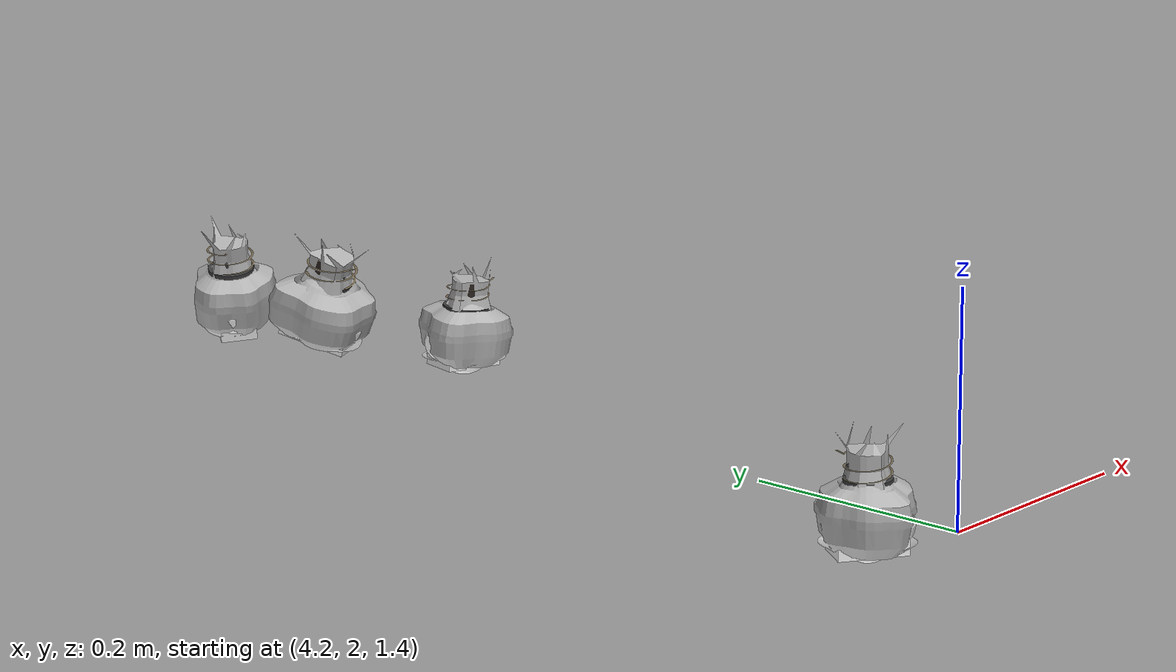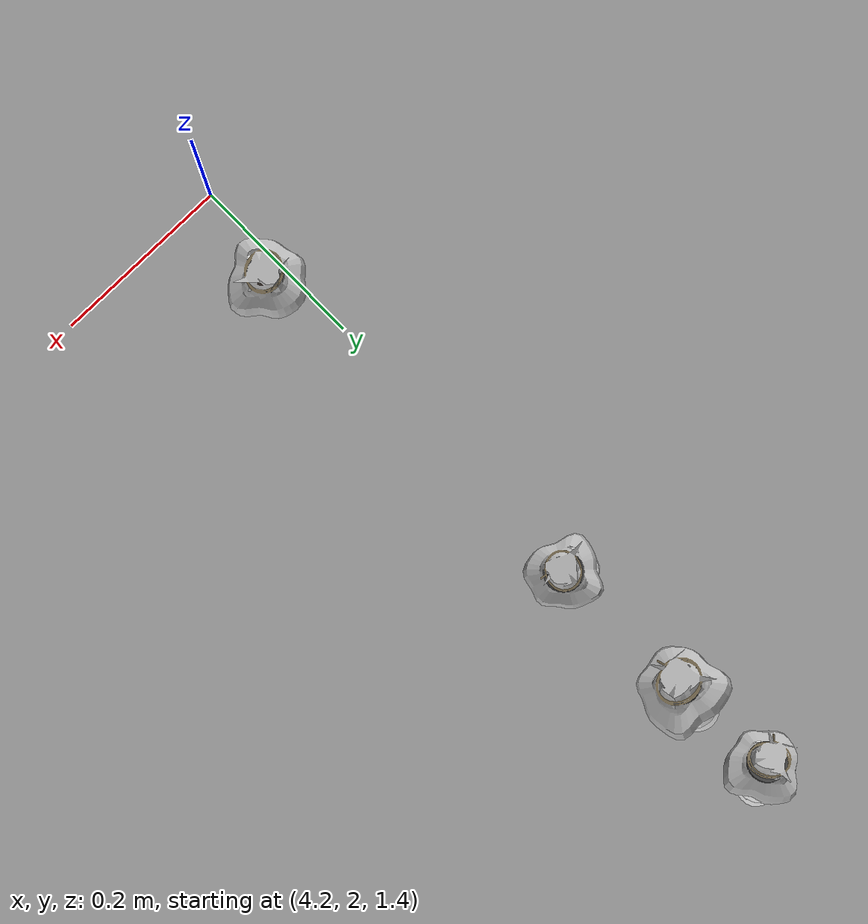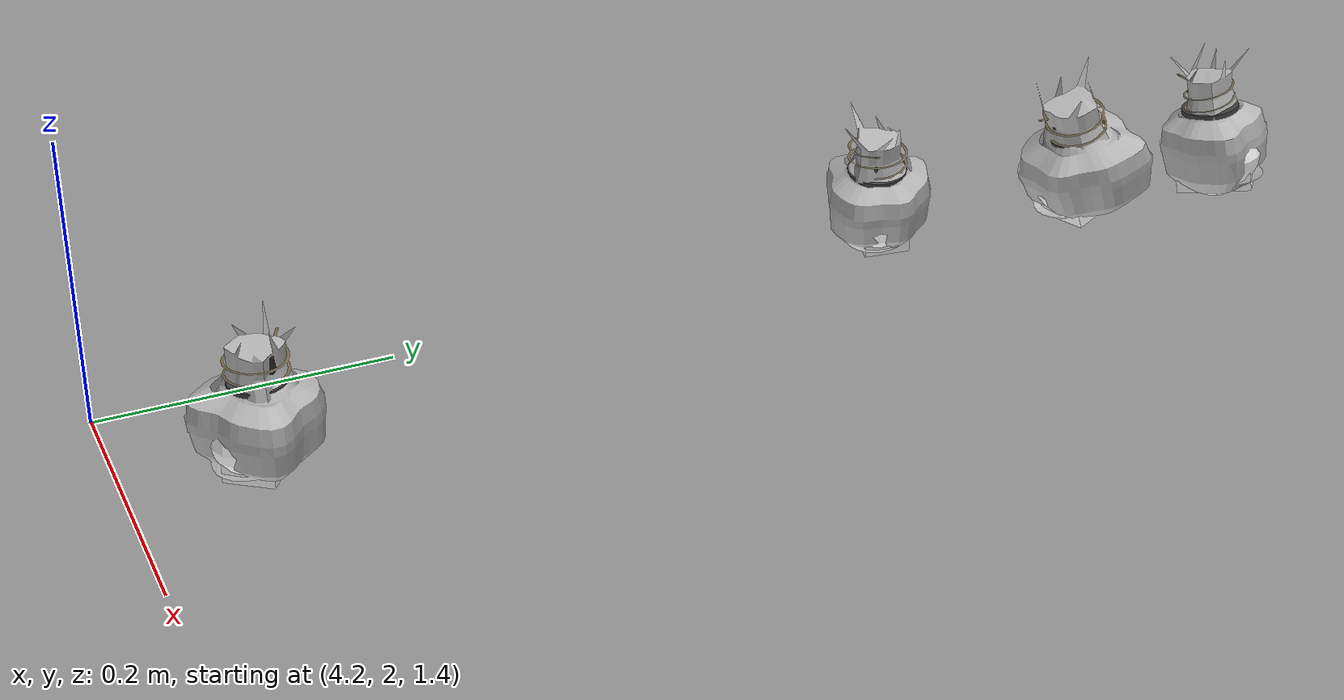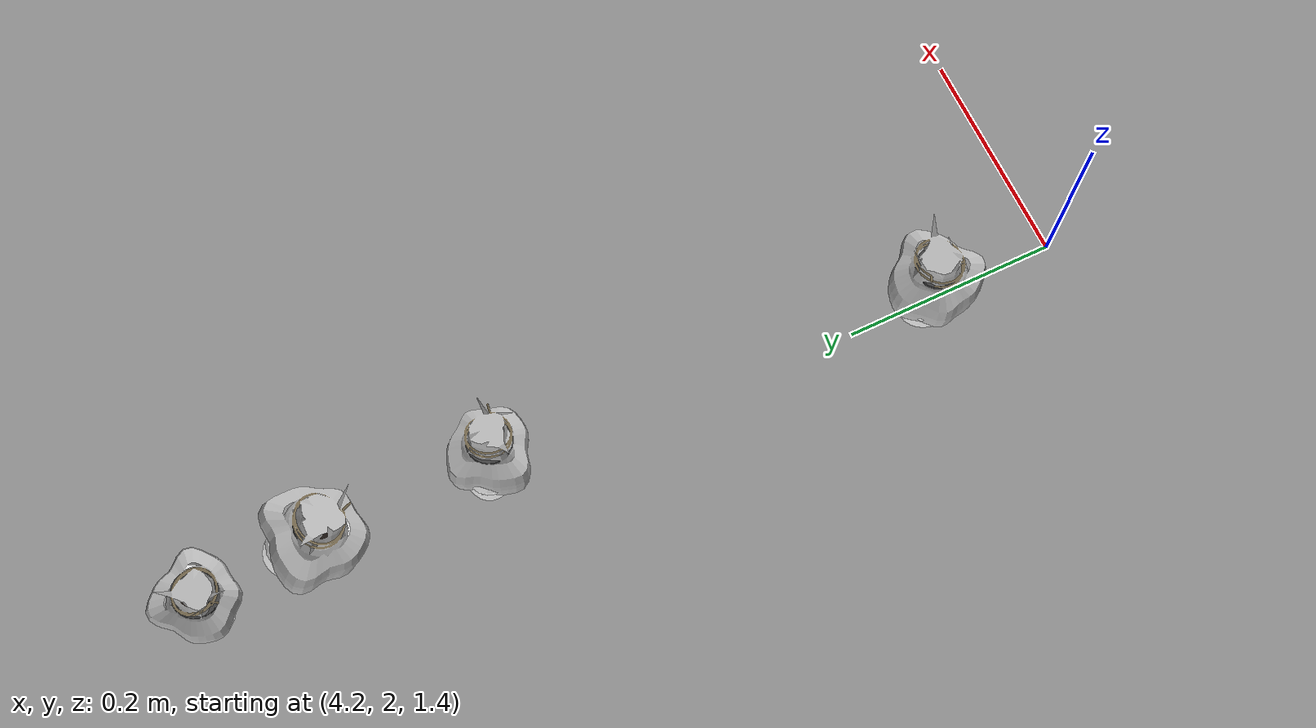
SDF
<sdf version="1.11">
 <world name="peach_orchard">
  <model name="ground">
   <static>true</static>
   <link name="link">
    <visual name="soil">
     <geometry><plane><normal>0 0 1</normal><size>32 22</size></plane></geometry>
     <material>
      <ambient>1 1 1 1</ambient>
      <diffuse>1 1 1 1</diffuse>
      <specular>0.1 0.1 0.1 1</specular>
      <pbr>
       <metal>
        <albedo_map>textures/soil_albedo.png</albedo_map>
        <normal_map type="tangent">textures/soil_normal.png</normal_map>
        <roughness>0.95</roughness>
        <metalness>0</metalness>
       </metal>
      </pbr>
     </material>
    </visual>
    <collision name="c_soil">
     <geometry><plane><normal>0 0 1</normal><size>32 22</size></plane></geometry>
    </collision>
   </link>
  </model>
  <model name="peach_tree_r3_t4_00">
   <pose>4.22 2.54373 1.42739 0 0.0760497 -0.506786</pose>
   <static>true</static>
   <link name="bag">
    <visual name="bag_mesh">
     <pose>0 0 0.038293 0 0 -0</pose>
     <geometry>
      <mesh><uri>model://peach_sim/meshes/bagged_peach.glb</uri><scale>0.945818 1.05032 0.870296</scale></mesh>
     </geometry>
    </visual>
    <visual name="body">
     <pose>0 0 0.020293 0 0 0</pose>
     <geometry><ellipsoid><radii>0.0354682 0.0273084 0.0219165</radii></ellipsoid></geometry>
     <material>
      <ambient>1 1 1 1</ambient>
      <diffuse>1 1 1 1</diffuse>
      <specular>0.1 0.1 0.1 1</specular>
      <pbr>
       <metal>
        <albedo_map>textures/paper_bag_albedo.png</albedo_map>
        <normal_map type="tangent">textures/paper_bag_normal.png</normal_map>
        <roughness>0.72</roughness>
        <metalness>0</metalness>
       </metal>
      </pbr>
     </material>
    </visual>
    <visual name="bottom_fold">
     <pose>0 0 0.012 0 0 0.35</pose>
     <geometry><box><size>0.0549757 0.0314046 0.022</size></box></geometry>
     <material>
      <ambient>1 1 1 1</ambient>
      <diffuse>1 1 1 1</diffuse>
      <specular>0.1 0.1 0.1 1</specular>
      <pbr>
       <metal>
        <albedo_map>textures/paper_bag_albedo.png</albedo_map>
        <normal_map type="tangent">textures/paper_bag_normal.png</normal_map>
        <roughness>0.8</roughness>
        <metalness>0</metalness>
       </metal>
      </pbr>
     </material>
    </visual>
    <visual name="fruit">
     <pose>0 0 0.0183581 0 0 0</pose>
     <geometry><sphere><radius>0.0253324</radius></sphere></geometry>
     <material>
      <ambient>1 1 1 1</ambient>
      <diffuse>1 1 1 1</diffuse>
      <specular>0.1 0.1 0.1 1</specular>
      <pbr>
       <metal>
        <albedo_map>textures/fruit_skin_albedo.png</albedo_map>
        <normal_map type="tangent">textures/fruit_skin_normal.png</normal_map>
        <roughness>0.55</roughness>
        <metalness>0</metalness>
       </metal>
      </pbr>
     </material>
    </visual>
    <visual name="neck">
     <pose>0 0 0.0495861 0 0 0</pose>
     <geometry><cylinder><radius>0.013</radius><length>0.018</length></cylinder></geometry>
     <material>
      <ambient>1 1 1 1</ambient>
      <diffuse>1 1 1 1</diffuse>
      <specular>0.1 0.1 0.1 1</specular>
      <pbr>
       <metal>
        <albedo_map>textures/paper_bag_albedo.png</albedo_map>
        <normal_map type="tangent">textures/paper_bag_normal.png</normal_map>
        <roughness>0.75</roughness>
        <metalness>0</metalness>
       </metal>
      </pbr>
     </material>
    </visual>
    <visual name="gather">
     <pose>0 0 0.0305861 0 0 0</pose>
     <geometry><cylinder><radius>0.019</radius><length>0.02</length></cylinder></geometry>
     <material>
      <ambient>1 1 1 1</ambient>
      <diffuse>1 1 1 1</diffuse>
      <specular>0.1 0.1 0.1 1</specular>
      <pbr>
       <metal>
        <albedo_map>textures/paper_bag_albedo.png</albedo_map>
        <normal_map type="tangent">textures/paper_bag_normal.png</normal_map>
        <roughness>0.8</roughness>
        <metalness>0</metalness>
       </metal>
      </pbr>
     </material>
    </visual>
    <visual name="inner_paper">
     <pose>0 0 0.0545861 0 0 0</pose>
     <geometry><cylinder><radius>0.01</radius><length>0.008</length></cylinder></geometry>
     <material>
      <ambient>0.180392 0.14902 0.133333 1</ambient>
      <diffuse>0.180392 0.14902 0.133333 1</diffuse>
      <specular>0.1 0.1 0.1 1</specular>
     </material>
    </visual>
    <visual name="wire_0">
     <pose>0 0 0.0445861 0 0 0</pose>
     <geometry><cylinder><radius>0.0205</radius><length>0.0035</length></cylinder></geometry>
     <material>
      <ambient>0.25 0.25 0.25 1</ambient>
      <diffuse>0.25 0.25 0.25 1</diffuse>
      <specular>0.1 0.1 0.1 1</specular>
     </material>
    </visual>
    <visual name="wire_1">
     <pose>0 0 0.0515861 0 0 0</pose>
     <geometry><cylinder><radius>0.0205</radius><length>0.0035</length></cylinder></geometry>
     <material>
      <ambient>0.25 0.25 0.25 1</ambient>
      <diffuse>0.25 0.25 0.25 1</diffuse>
      <specular>0.1 0.1 0.1 1</specular>
     </material>
    </visual>
    <visual name="wire_tail">
     <pose>0.01 0 0.0525861 0 0.521618 0</pose>
     <geometry><cylinder><radius>0.0012</radius><length>0.026</length></cylinder></geometry>
     <material>
      <ambient>0.25 0.25 0.25 1</ambient>
      <diffuse>0.25 0.25 0.25 1</diffuse>
      <specular>0.1 0.1 0.1 1</specular>
     </material>
    </visual>
    <collision name="c_body">
     <pose>0 0 0.020293 0 0 0</pose>
     <geometry><cylinder><radius>0.0354682</radius><length>0.0405861</length></cylinder></geometry>
    </collision>
   </link>
  </model>
  <model name="peach_tree_r3_t4_01">
   <pose>4.22 2.71573 1.41822 0 0.261357 -1.61579</pose>
   <static>true</static>
   <link name="bag">
    <visual name="bag_mesh">
     <pose>0 0 0.0409047 0 0 -0</pose>
     <geometry>
      <mesh><uri>model://peach_sim/meshes/bagged_peach.glb</uri><scale>1.08688 1.24991 0.929652</scale></mesh>
     </geometry>
    </visual>
    <visual name="body">
     <pose>0 0 0.0229047 0 0 0</pose>
     <geometry><ellipsoid><radii>0.0407579 0.0324977 0.0247371</radii></ellipsoid></geometry>
     <material>
      <ambient>1 1 1 1</ambient>
      <diffuse>1 1 1 1</diffuse>
      <specular>0.1 0.1 0.1 1</specular>
      <pbr>
       <metal>
        <albedo_map>textures/paper_bag_albedo.png</albedo_map>
        <normal_map type="tangent">textures/paper_bag_normal.png</normal_map>
        <roughness>0.72</roughness>
        <metalness>0</metalness>
       </metal>
      </pbr>
     </material>
    </visual>
    <visual name="bottom_fold">
     <pose>0 0 0.012 0 0 0.35</pose>
     <geometry><box><size>0.0631747 0.0373724 0.022</size></box></geometry>
     <material>
      <ambient>1 1 1 1</ambient>
      <diffuse>1 1 1 1</diffuse>
      <specular>0.1 0.1 0.1 1</specular>
      <pbr>
       <metal>
        <albedo_map>textures/paper_bag_albedo.png</albedo_map>
        <normal_map type="tangent">textures/paper_bag_normal.png</normal_map>
        <roughness>0.8</roughness>
        <metalness>0</metalness>
       </metal>
      </pbr>
     </material>
    </visual>
    <visual name="fruit">
     <pose>0 0 0.0215853 0 0 0</pose>
     <geometry><sphere><radius>0.0286887</radius></sphere></geometry>
     <material>
      <ambient>1 1 1 1</ambient>
      <diffuse>1 1 1 1</diffuse>
      <specular>0.1 0.1 0.1 1</specular>
      <pbr>
       <metal>
        <albedo_map>textures/fruit_skin_albedo.png</albedo_map>
        <normal_map type="tangent">textures/fruit_skin_normal.png</normal_map>
        <roughness>0.55</roughness>
        <metalness>0</metalness>
       </metal>
      </pbr>
     </material>
    </visual>
    <visual name="neck">
     <pose>0 0 0.0548094 0 0 0</pose>
     <geometry><cylinder><radius>0.013</radius><length>0.018</length></cylinder></geometry>
     <material>
      <ambient>1 1 1 1</ambient>
      <diffuse>1 1 1 1</diffuse>
      <specular>0.1 0.1 0.1 1</specular>
      <pbr>
       <metal>
        <albedo_map>textures/paper_bag_albedo.png</albedo_map>
        <normal_map type="tangent">textures/paper_bag_normal.png</normal_map>
        <roughness>0.75</roughness>
        <metalness>0</metalness>
       </metal>
      </pbr>
     </material>
    </visual>
    <visual name="gather">
     <pose>0 0 0.0358094 0 0 0</pose>
     <geometry><cylinder><radius>0.019</radius><length>0.02</length></cylinder></geometry>
     <material>
      <ambient>1 1 1 1</ambient>
      <diffuse>1 1 1 1</diffuse>
      <specular>0.1 0.1 0.1 1</specular>
      <pbr>
       <metal>
        <albedo_map>textures/paper_bag_albedo.png</albedo_map>
        <normal_map type="tangent">textures/paper_bag_normal.png</normal_map>
        <roughness>0.8</roughness>
        <metalness>0</metalness>
       </metal>
      </pbr>
     </material>
    </visual>
    <visual name="inner_paper">
     <pose>0 0 0.0598094 0 0 0</pose>
     <geometry><cylinder><radius>0.01</radius><length>0.008</length></cylinder></geometry>
     <material>
      <ambient>0.180392 0.14902 0.133333 1</ambient>
      <diffuse>0.180392 0.14902 0.133333 1</diffuse>
      <specular>0.1 0.1 0.1 1</specular>
     </material>
    </visual>
    <visual name="wire_0">
     <pose>0 0 0.0498094 0 0 0</pose>
     <geometry><cylinder><radius>0.0205</radius><length>0.0035</length></cylinder></geometry>
     <material>
      <ambient>0.25 0.25 0.25 1</ambient>
      <diffuse>0.25 0.25 0.25 1</diffuse>
      <specular>0.1 0.1 0.1 1</specular>
     </material>
    </visual>
    <visual name="wire_1">
     <pose>0 0 0.0568094 0 0 0</pose>
     <geometry><cylinder><radius>0.0205</radius><length>0.0035</length></cylinder></geometry>
     <material>
      <ambient>0.25 0.25 0.25 1</ambient>
      <diffuse>0.25 0.25 0.25 1</diffuse>
      <specular>0.1 0.1 0.1 1</specular>
     </material>
    </visual>
    <visual name="wire_tail">
     <pose>0.01 0 0.0578094 0 0.521618 0</pose>
     <geometry><cylinder><radius>0.0012</radius><length>0.026</length></cylinder></geometry>
     <material>
      <ambient>0.25 0.25 0.25 1</ambient>
      <diffuse>0.25 0.25 0.25 1</diffuse>
      <specular>0.1 0.1 0.1 1</specular>
     </material>
    </visual>
    <collision name="c_body">
     <pose>0 0 0.0229047 0 0 0</pose>
     <geometry><cylinder><radius>0.0407579</radius><length>0.0458094</length></cylinder></geometry>
    </collision>
   </link>
  </model>
  <model name="peach_tree_r3_t4_02">
   <pose>4.22 2.82045 1.40754 0 0.177568 -2.57309</pose>
   <static>true</static>
   <link name="bag">
    <visual name="bag_mesh">
     <pose>0 0 0.0425499 0 0 -0</pose>
     <geometry>
      <mesh><uri>model://peach_sim/meshes/bagged_peach.glb</uri><scale>0.917658 1.07547 0.967042</scale></mesh>
     </geometry>
    </visual>
    <visual name="body">
     <pose>0 0 0.0245499 0 0 0</pose>
     <geometry><ellipsoid><radii>0.0344122 0.0279623 0.0265139</radii></ellipsoid></geometry>
     <material>
      <ambient>1 1 1 1</ambient>
      <diffuse>1 1 1 1</diffuse>
      <specular>0.1 0.1 0.1 1</specular>
      <pbr>
       <metal>
        <albedo_map>textures/paper_bag_albedo.png</albedo_map>
        <normal_map type="tangent">textures/paper_bag_normal.png</normal_map>
        <roughness>0.72</roughness>
        <metalness>0</metalness>
       </metal>
      </pbr>
     </material>
    </visual>
    <visual name="bottom_fold">
     <pose>0 0 0.012 0 0 0.35</pose>
     <geometry><box><size>0.0533389 0.0321567 0.022</size></box></geometry>
     <material>
      <ambient>1 1 1 1</ambient>
      <diffuse>1 1 1 1</diffuse>
      <specular>0.1 0.1 0.1 1</specular>
      <pbr>
       <metal>
        <albedo_map>textures/paper_bag_albedo.png</albedo_map>
        <normal_map type="tangent">textures/paper_bag_normal.png</normal_map>
        <roughness>0.8</roughness>
        <metalness>0</metalness>
       </metal>
      </pbr>
     </material>
    </visual>
    <visual name="fruit">
     <pose>0 0 0.0174951 0 0 0</pose>
     <geometry><sphere><radius>0.024435</radius></sphere></geometry>
     <material>
      <ambient>1 1 1 1</ambient>
      <diffuse>1 1 1 1</diffuse>
      <specular>0.1 0.1 0.1 1</specular>
      <pbr>
       <metal>
        <albedo_map>textures/fruit_skin_albedo.png</albedo_map>
        <normal_map type="tangent">textures/fruit_skin_normal.png</normal_map>
        <roughness>0.55</roughness>
        <metalness>0</metalness>
       </metal>
      </pbr>
     </material>
    </visual>
    <visual name="neck">
     <pose>0 0 0.0580997 0 0 0</pose>
     <geometry><cylinder><radius>0.013</radius><length>0.018</length></cylinder></geometry>
     <material>
      <ambient>1 1 1 1</ambient>
      <diffuse>1 1 1 1</diffuse>
      <specular>0.1 0.1 0.1 1</specular>
      <pbr>
       <metal>
        <albedo_map>textures/paper_bag_albedo.png</albedo_map>
        <normal_map type="tangent">textures/paper_bag_normal.png</normal_map>
        <roughness>0.75</roughness>
        <metalness>0</metalness>
       </metal>
      </pbr>
     </material>
    </visual>
    <visual name="gather">
     <pose>0 0 0.0390997 0 0 0</pose>
     <geometry><cylinder><radius>0.019</radius><length>0.02</length></cylinder></geometry>
     <material>
      <ambient>1 1 1 1</ambient>
      <diffuse>1 1 1 1</diffuse>
      <specular>0.1 0.1 0.1 1</specular>
      <pbr>
       <metal>
        <albedo_map>textures/paper_bag_albedo.png</albedo_map>
        <normal_map type="tangent">textures/paper_bag_normal.png</normal_map>
        <roughness>0.8</roughness>
        <metalness>0</metalness>
       </metal>
      </pbr>
     </material>
    </visual>
    <visual name="inner_paper">
     <pose>0 0 0.0630997 0 0 0</pose>
     <geometry><cylinder><radius>0.01</radius><length>0.008</length></cylinder></geometry>
     <material>
      <ambient>0.180392 0.14902 0.133333 1</ambient>
      <diffuse>0.180392 0.14902 0.133333 1</diffuse>
      <specular>0.1 0.1 0.1 1</specular>
     </material>
    </visual>
    <visual name="wire_0">
     <pose>0 0 0.0530997 0 0 0</pose>
     <geometry><cylinder><radius>0.0205</radius><length>0.0035</length></cylinder></geometry>
     <material>
      <ambient>0.25 0.25 0.25 1</ambient>
      <diffuse>0.25 0.25 0.25 1</diffuse>
      <specular>0.1 0.1 0.1 1</specular>
     </material>
    </visual>
    <visual name="wire_1">
     <pose>0 0 0.0600997 0 0 0</pose>
     <geometry><cylinder><radius>0.0205</radius><length>0.0035</length></cylinder></geometry>
     <material>
      <ambient>0.25 0.25 0.25 1</ambient>
      <diffuse>0.25 0.25 0.25 1</diffuse>
      <specular>0.1 0.1 0.1 1</specular>
     </material>
    </visual>
    <visual name="wire_tail">
     <pose>0.01 0 0.0610997 0 0.521618 0</pose>
     <geometry><cylinder><radius>0.0012</radius><length>0.026</length></cylinder></geometry>
     <material>
      <ambient>0.25 0.25 0.25 1</ambient>
      <diffuse>0.25 0.25 0.25 1</diffuse>
      <specular>0.1 0.1 0.1 1</specular>
     </material>
    </visual>
    <collision name="c_body">
     <pose>0 0 0.0245499 0 0 0</pose>
     <geometry><cylinder><radius>0.0344122</radius><length>0.0490997</length></cylinder></geometry>
    </collision>
   </link>
  </model>
  <model name="peach_tree_r3_t4_04">
   <pose>4.22 2.10398 1.35455 0 0.00661017 2.1864</pose>
   <static>true</static>
   <link name="bag">
    <visual name="bag_mesh">
     <pose>0 0 0.0437702 0 0 0</pose>
     <geometry>
      <mesh><uri>model://peach_sim/meshes/bagged_peach.glb</uri><scale>1.04118 1.20419 0.994778</scale></mesh>
     </geometry>
    </visual>
    <visual name="body">
     <pose>0 0 0.0257702 0 0 0</pose>
     <geometry><ellipsoid><radii>0.0390442 0.031309 0.0278318</radii></ellipsoid></geometry>
     <material>
      <ambient>1 1 1 1</ambient>
      <diffuse>1 1 1 1</diffuse>
      <specular>0.1 0.1 0.1 1</specular>
      <pbr>
       <metal>
        <albedo_map>textures/paper_bag_albedo.png</albedo_map>
        <normal_map type="tangent">textures/paper_bag_normal.png</normal_map>
        <roughness>0.72</roughness>
        <metalness>0</metalness>
       </metal>
      </pbr>
     </material>
    </visual>
    <visual name="bottom_fold">
     <pose>0 0 0.012 0 0 0.35</pose>
     <geometry><box><size>0.0605185 0.0360054 0.022</size></box></geometry>
     <material>
      <ambient>1 1 1 1</ambient>
      <diffuse>1 1 1 1</diffuse>
      <specular>0.1 0.1 0.1 1</specular>
      <pbr>
       <metal>
        <albedo_map>textures/paper_bag_albedo.png</albedo_map>
        <normal_map type="tangent">textures/paper_bag_normal.png</normal_map>
        <roughness>0.8</roughness>
        <metalness>0</metalness>
       </metal>
      </pbr>
     </material>
    </visual>
    <visual name="fruit">
     <pose>0 0 0.0191026 0 0 0</pose>
     <geometry><sphere><radius>0.0261067</radius></sphere></geometry>
     <material>
      <ambient>1 1 1 1</ambient>
      <diffuse>1 1 1 1</diffuse>
      <specular>0.1 0.1 0.1 1</specular>
      <pbr>
       <metal>
        <albedo_map>textures/fruit_skin_albedo.png</albedo_map>
        <normal_map type="tangent">textures/fruit_skin_normal.png</normal_map>
        <roughness>0.55</roughness>
        <metalness>0</metalness>
       </metal>
      </pbr>
     </material>
    </visual>
    <visual name="neck">
     <pose>0 0 0.0605404 0 0 0</pose>
     <geometry><cylinder><radius>0.013</radius><length>0.018</length></cylinder></geometry>
     <material>
      <ambient>1 1 1 1</ambient>
      <diffuse>1 1 1 1</diffuse>
      <specular>0.1 0.1 0.1 1</specular>
      <pbr>
       <metal>
        <albedo_map>textures/paper_bag_albedo.png</albedo_map>
        <normal_map type="tangent">textures/paper_bag_normal.png</normal_map>
        <roughness>0.75</roughness>
        <metalness>0</metalness>
       </metal>
      </pbr>
     </material>
    </visual>
    <visual name="gather">
     <pose>0 0 0.0415404 0 0 0</pose>
     <geometry><cylinder><radius>0.019</radius><length>0.02</length></cylinder></geometry>
     <material>
      <ambient>1 1 1 1</ambient>
      <diffuse>1 1 1 1</diffuse>
      <specular>0.1 0.1 0.1 1</specular>
      <pbr>
       <metal>
        <albedo_map>textures/paper_bag_albedo.png</albedo_map>
        <normal_map type="tangent">textures/paper_bag_normal.png</normal_map>
        <roughness>0.8</roughness>
        <metalness>0</metalness>
       </metal>
      </pbr>
     </material>
    </visual>
    <visual name="inner_paper">
     <pose>0 0 0.0655404 0 0 0</pose>
     <geometry><cylinder><radius>0.01</radius><length>0.008</length></cylinder></geometry>
     <material>
      <ambient>0.180392 0.14902 0.133333 1</ambient>
      <diffuse>0.180392 0.14902 0.133333 1</diffuse>
      <specular>0.1 0.1 0.1 1</specular>
     </material>
    </visual>
    <visual name="wire_0">
     <pose>0 0 0.0555404 0 0 0</pose>
     <geometry><cylinder><radius>0.0205</radius><length>0.0035</length></cylinder></geometry>
     <material>
      <ambient>0.25 0.25 0.25 1</ambient>
      <diffuse>0.25 0.25 0.25 1</diffuse>
      <specular>0.1 0.1 0.1 1</specular>
     </material>
    </visual>
    <visual name="wire_1">
     <pose>0 0 0.0625404 0 0 0</pose>
     <geometry><cylinder><radius>0.0205</radius><length>0.0035</length></cylinder></geometry>
     <material>
      <ambient>0.25 0.25 0.25 1</ambient>
      <diffuse>0.25 0.25 0.25 1</diffuse>
      <specular>0.1 0.1 0.1 1</specular>
     </material>
    </visual>
    <visual name="wire_tail">
     <pose>0.01 0 0.0635404 0 0.521618 0</pose>
     <geometry><cylinder><radius>0.0012</radius><length>0.026</length></cylinder></geometry>
     <material>
      <ambient>0.25 0.25 0.25 1</ambient>
      <diffuse>0.25 0.25 0.25 1</diffuse>
      <specular>0.1 0.1 0.1 1</specular>
     </material>
    </visual>
    <collision name="c_body">
     <pose>0 0 0.0257702 0 0 0</pose>
     <geometry><cylinder><radius>0.0390442</radius><length>0.0515404</length></cylinder></geometry>
    </collision>
   </link>
  </model>
 </world>
</sdf>
